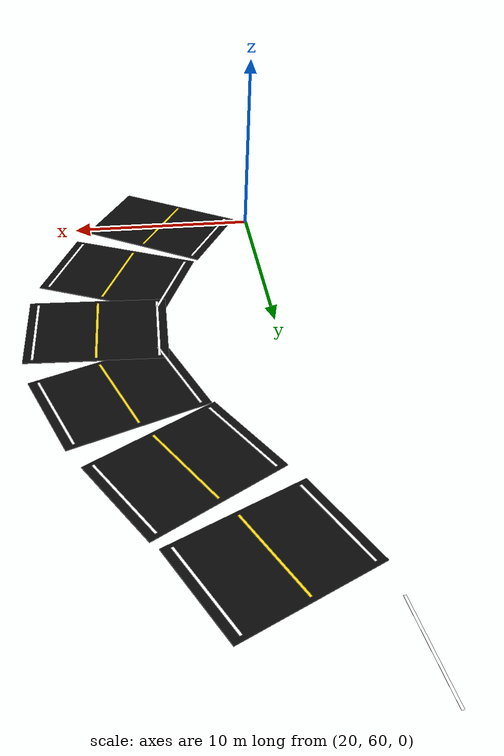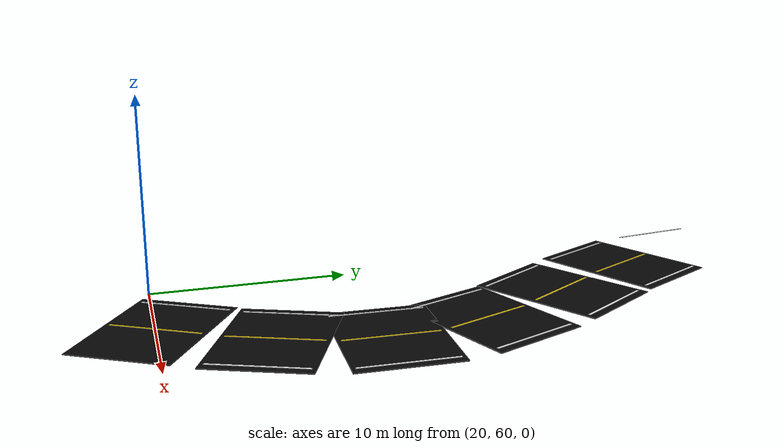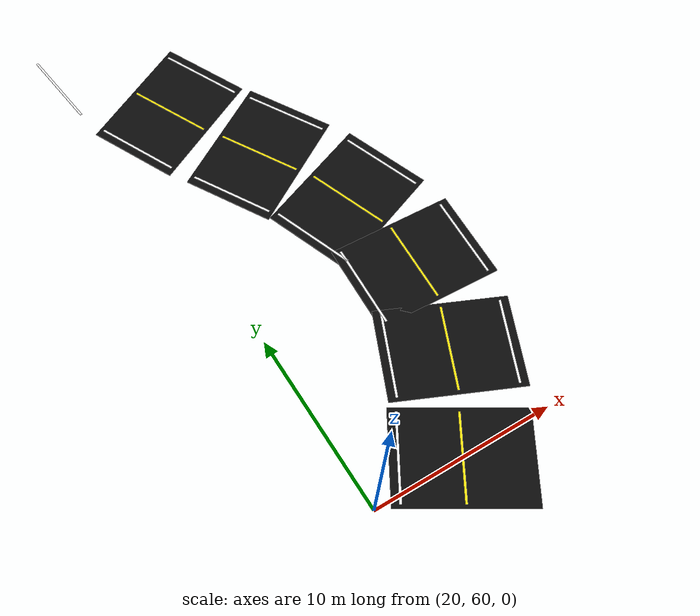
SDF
<sdf version="1.6">
 <world name="curved_road_world">
  <include><uri>model://sun</uri></include>
  <model name="road_small_s_curve_00">
   <static>true</static>
   <pose>25.000 60.000 0.015 0 0 1.030377</pose>
   <link name="road_link">
    <collision name="road_collision"><geometry><box><size>5.000 7.000 0.04</size></box></geometry></collision>
    <visual name="road_visual">
     <geometry><box><size>5.000 7.000 0.04</size></box></geometry>
     <material>
      <ambient>0.025 0.025 0.025 1</ambient>
      <diffuse>0.035 0.035 0.035 1</diffuse>
      <specular>0.01 0.01 0.01 1</specular>
     </material>
    </visual>
   </link>
  </model>
  <model name="road_small_s_curve_01">
   <static>true</static>
   <pose>27.727 65.000 0.015 0 0 1.157116</pose>
   <link name="road_link">
    <collision name="road_collision"><geometry><box><size>5.000 7.000 0.04</size></box></geometry></collision>
    <visual name="road_visual">
     <geometry><box><size>5.000 7.000 0.04</size></box></geometry>
     <material>
      <ambient>0.025 0.025 0.025 1</ambient>
      <diffuse>0.035 0.035 0.035 1</diffuse>
      <specular>0.01 0.01 0.01 1</specular>
     </material>
    </visual>
   </link>
  </model>
  <model name="road_small_s_curve_02">
   <static>true</static>
   <pose>28.990 70.000 0.015 0 0 1.528379</pose>
   <link name="road_link">
    <collision name="road_collision"><geometry><box><size>5.000 7.000 0.04</size></box></geometry></collision>
    <visual name="road_visual">
     <geometry><box><size>5.000 7.000 0.04</size></box></geometry>
     <material>
      <ambient>0.025 0.025 0.025 1</ambient>
      <diffuse>0.035 0.035 0.035 1</diffuse>
      <specular>0.01 0.01 0.01 1</specular>
     </material>
    </visual>
   </link>
  </model>
  <model name="road_small_s_curve_03">
   <static>true</static>
   <pose>28.112 75.000 0.015 0 0 1.931235</pose>
   <link name="road_link">
    <collision name="road_collision"><geometry><box><size>5.000 7.000 0.04</size></box></geometry></collision>
    <visual name="road_visual">
     <geometry><box><size>5.000 7.000 0.04</size></box></geometry>
     <material>
      <ambient>0.025 0.025 0.025 1</ambient>
      <diffuse>0.035 0.035 0.035 1</diffuse>
      <specular>0.01 0.01 0.01 1</specular>
     </material>
    </visual>
   </link>
  </model>
  <model name="road_small_s_curve_04">
   <static>true</static>
   <pose>25.564 80.000 0.015 0 0 2.106789</pose>
   <link name="road_link">
    <collision name="road_collision"><geometry><box><size>5.000 7.000 0.04</size></box></geometry></collision>
    <visual name="road_visual">
     <geometry><box><size>5.000 7.000 0.04</size></box></geometry>
     <material>
      <ambient>0.025 0.025 0.025 1</ambient>
      <diffuse>0.035 0.035 0.035 1</diffuse>
      <specular>0.01 0.01 0.01 1</specular>
     </material>
    </visual>
   </link>
  </model>
  <model name="road_small_s_curve_05">
   <static>true</static>
   <pose>22.714 85.000 0.015 0 0 2.028294</pose>
   <link name="road_link">
    <collision name="road_collision"><geometry><box><size>5.000 7.000 0.04</size></box></geometry></collision>
    <visual name="road_visual">
     <geometry><box><size>5.000 7.000 0.04</size></box></geometry>
     <material>
      <ambient>0.025 0.025 0.025 1</ambient>
      <diffuse>0.035 0.035 0.035 1</diffuse>
      <specular>0.01 0.01 0.01 1</specular>
     </material>
    </visual>
   </link>
  </model>
  <model name="left_edge_small_s_curve_00">
   <static>true</static>
   <pose>22.385 61.569 0.050 0 0 1.030377</pose>
   <link name="line_link">
    <visual name="line_visual">
     <geometry><box><size>4.600 0.120 0.012</size></box></geometry>
     <material><ambient>1 1 1 1</ambient><diffuse>1 1 1 1</diffuse></material>
    </visual>
   </link>
  </model>
  <model name="center_line_small_s_curve_00">
   <static>true</static>
   <pose>25.000 60.000 0.050 0 0 1.030377</pose>
   <link name="line_link">
    <visual name="line_visual">
     <geometry><box><size>4.600 0.120 0.012</size></box></geometry>
     <material><ambient>1 0.85 0.05 1</ambient><diffuse>1 0.85 0.05 1</diffuse></material>
    </visual>
   </link>
  </model>
  <model name="left_edge_small_s_curve_01">
   <static>true</static>
   <pose>24.934 66.226 0.050 0 0 1.157116</pose>
   <link name="line_link">
    <visual name="line_visual">
     <geometry><box><size>4.600 0.120 0.012</size></box></geometry>
     <material><ambient>1 1 1 1</ambient><diffuse>1 1 1 1</diffuse></material>
    </visual>
   </link>
  </model>
  <model name="right_edge_small_s_curve_01">
   <static>true</static>
   <pose>30.519 63.774 0.050 0 0 1.157116</pose>
   <link name="line_link">
    <visual name="line_visual">
     <geometry><box><size>4.600 0.120 0.012</size></box></geometry>
     <material><ambient>1 1 1 1</ambient><diffuse>1 1 1 1</diffuse></material>
    </visual>
   </link>
  </model>
  <model name="center_line_small_s_curve_01">
   <static>true</static>
   <pose>27.727 65.000 0.050 0 0 1.157116</pose>
   <link name="line_link">
    <visual name="line_visual">
     <geometry><box><size>4.600 0.120 0.012</size></box></geometry>
     <material><ambient>1 0.85 0.05 1</ambient><diffuse>1 0.85 0.05 1</diffuse></material>
    </visual>
   </link>
  </model>
  <model name="left_edge_small_s_curve_02">
   <static>true</static>
   <pose>25.943 70.129 0.050 0 0 1.528379</pose>
   <link name="line_link">
    <visual name="line_visual">
     <geometry><box><size>4.600 0.120 0.012</size></box></geometry>
     <material><ambient>1 1 1 1</ambient><diffuse>1 1 1 1</diffuse></material>
    </visual>
   </link>
  </model>
  <model name="right_edge_small_s_curve_02">
   <static>true</static>
   <pose>32.037 69.871 0.050 0 0 1.528379</pose>
   <link name="line_link">
    <visual name="line_visual">
     <geometry><box><size>4.600 0.120 0.012</size></box></geometry>
     <material><ambient>1 1 1 1</ambient><diffuse>1 1 1 1</diffuse></material>
    </visual>
   </link>
  </model>
  <model name="center_line_small_s_curve_02">
   <static>true</static>
   <pose>28.990 70.000 0.050 0 0 1.528379</pose>
   <link name="line_link">
    <visual name="line_visual">
     <geometry><box><size>4.600 0.120 0.012</size></box></geometry>
     <material><ambient>1 0.85 0.05 1</ambient><diffuse>1 0.85 0.05 1</diffuse></material>
    </visual>
   </link>
  </model>
  <model name="left_edge_small_s_curve_03">
   <static>true</static>
   <pose>25.258 73.924 0.050 0 0 1.931235</pose>
   <link name="line_link">
    <visual name="line_visual">
     <geometry><box><size>4.600 0.120 0.012</size></box></geometry>
     <material><ambient>1 1 1 1</ambient><diffuse>1 1 1 1</diffuse></material>
    </visual>
   </link>
  </model>
  <model name="right_edge_small_s_curve_03">
   <static>true</static>
   <pose>30.966 76.076 0.050 0 0 1.931235</pose>
   <link name="line_link">
    <visual name="line_visual">
     <geometry><box><size>4.600 0.120 0.012</size></box></geometry>
     <material><ambient>1 1 1 1</ambient><diffuse>1 1 1 1</diffuse></material>
    </visual>
   </link>
  </model>
  <model name="center_line_small_s_curve_03">
   <static>true</static>
   <pose>28.112 75.000 0.050 0 0 1.931235</pose>
   <link name="line_link">
    <visual name="line_visual">
     <geometry><box><size>4.600 0.120 0.012</size></box></geometry>
     <material><ambient>1 0.85 0.05 1</ambient><diffuse>1 0.85 0.05 1</diffuse></material>
    </visual>
   </link>
  </model>
  <model name="left_edge_small_s_curve_04">
   <static>true</static>
   <pose>22.942 78.442 0.050 0 0 2.106789</pose>
   <link name="line_link">
    <visual name="line_visual">
     <geometry><box><size>4.600 0.120 0.012</size></box></geometry>
     <material><ambient>1 1 1 1</ambient><diffuse>1 1 1 1</diffuse></material>
    </visual>
   </link>
  </model>
  <model name="right_edge_small_s_curve_04">
   <static>true</static>
   <pose>28.187 81.558 0.050 0 0 2.106789</pose>
   <link name="line_link">
    <visual name="line_visual">
     <geometry><box><size>4.600 0.120 0.012</size></box></geometry>
     <material><ambient>1 1 1 1</ambient><diffuse>1 1 1 1</diffuse></material>
    </visual>
   </link>
  </model>
  <model name="center_line_small_s_curve_04">
   <static>true</static>
   <pose>25.564 80.000 0.050 0 0 2.106789</pose>
   <link name="line_link">
    <visual name="line_visual">
     <geometry><box><size>4.600 0.120 0.012</size></box></geometry>
     <material><ambient>1 0.85 0.05 1</ambient><diffuse>1 0.85 0.05 1</diffuse></material>
    </visual>
   </link>
  </model>
  <model name="left_edge_small_s_curve_05">
   <static>true</static>
   <pose>19.977 83.653 0.050 0 0 2.028294</pose>
   <link name="line_link">
    <visual name="line_visual">
     <geometry><box><size>4.600 0.120 0.012</size></box></geometry>
     <material><ambient>1 1 1 1</ambient><diffuse>1 1 1 1</diffuse></material>
    </visual>
   </link>
  </model>
  <model name="right_edge_small_s_curve_05">
   <static>true</static>
   <pose>25.450 86.347 0.050 0 0 2.028294</pose>
   <link name="line_link">
    <visual name="line_visual">
     <geometry><box><size>4.600 0.120 0.012</size></box></geometry>
     <material><ambient>1 1 1 1</ambient><diffuse>1 1 1 1</diffuse></material>
    </visual>
   </link>
  </model>
  <model name="center_line_small_s_curve_05">
   <static>true</static>
   <pose>22.714 85.000 0.050 0 0 2.028294</pose>
   <link name="line_link">
    <visual name="line_visual">
     <geometry><box><size>4.600 0.120 0.012</size></box></geometry>
     <material><ambient>1 0.85 0.05 1</ambient><diffuse>1 0.85 0.05 1</diffuse></material>
    </visual>
   </link>
  </model>
  <model name="left_edge_small_s_curve_06">
   <static>true</static>
   <pose>18.064 89.617 0.050 0 0 1.696606</pose>
   <link name="line_link">
    <visual name="line_visual">
     <geometry><box><size>4.600 0.120 0.012</size></box></geometry>
     <material><ambient>1 1 1 1</ambient><diffuse>1 1 1 1</diffuse></material>
    </visual>
   </link>
  </model>
 </world>
</sdf>
